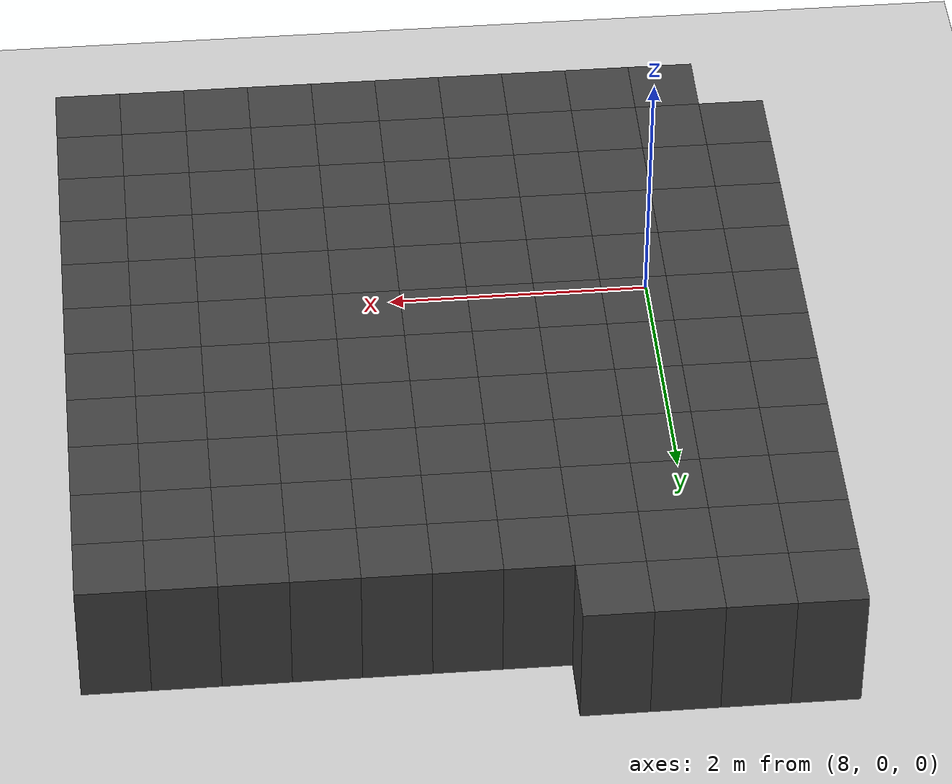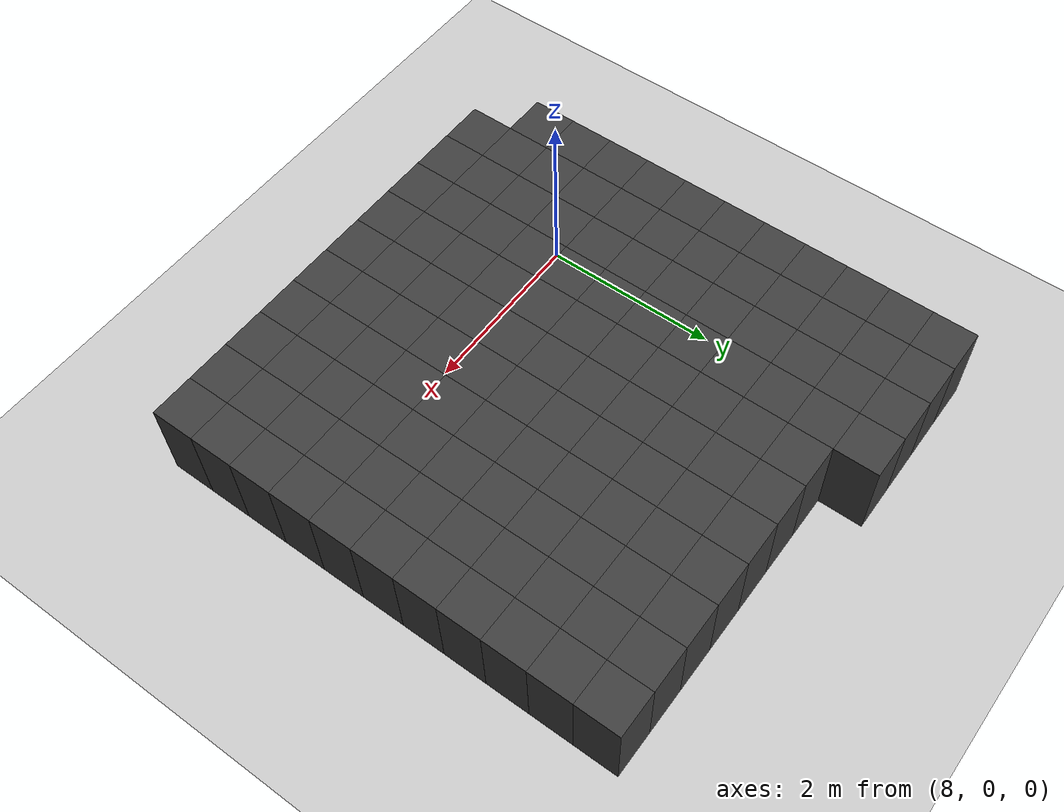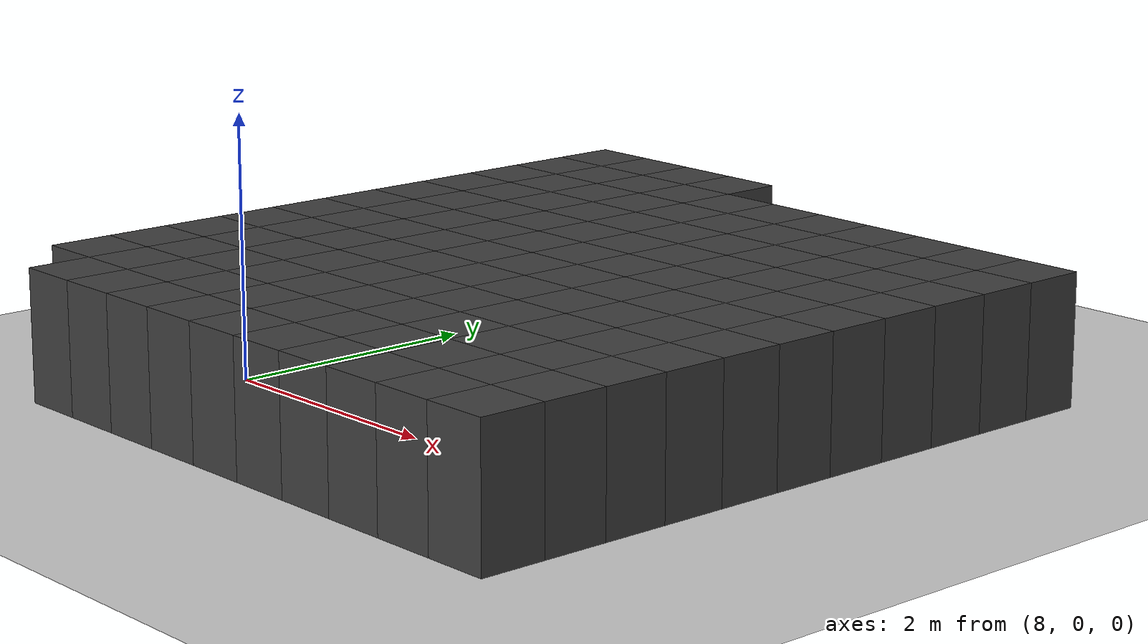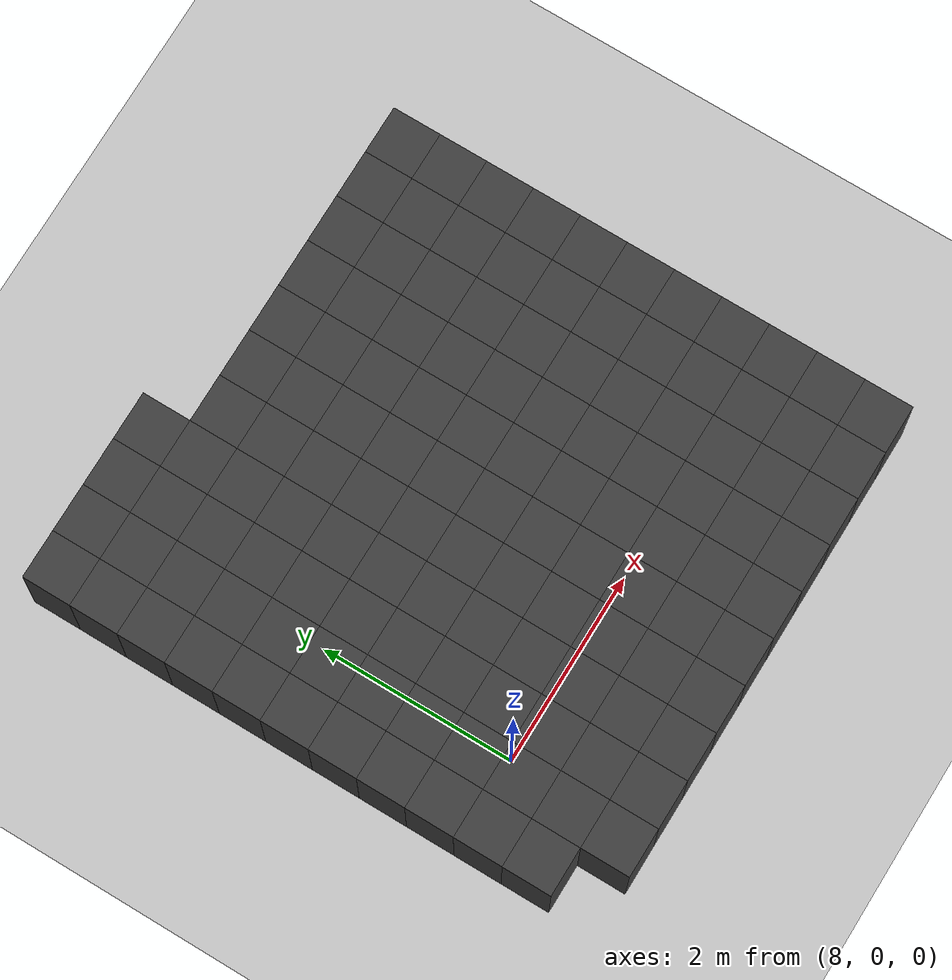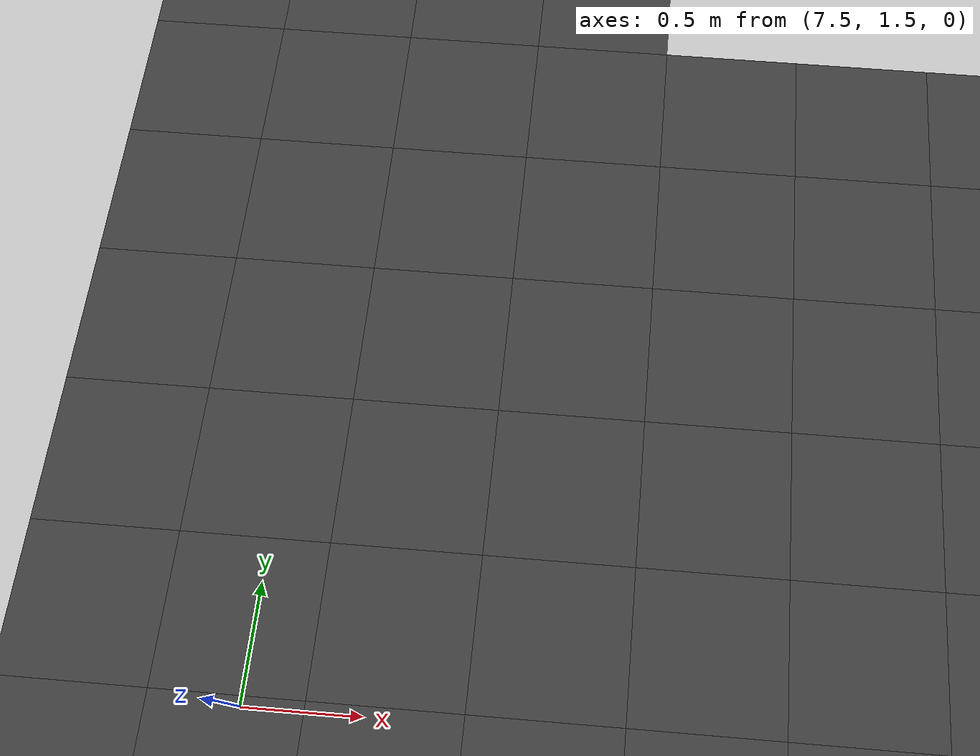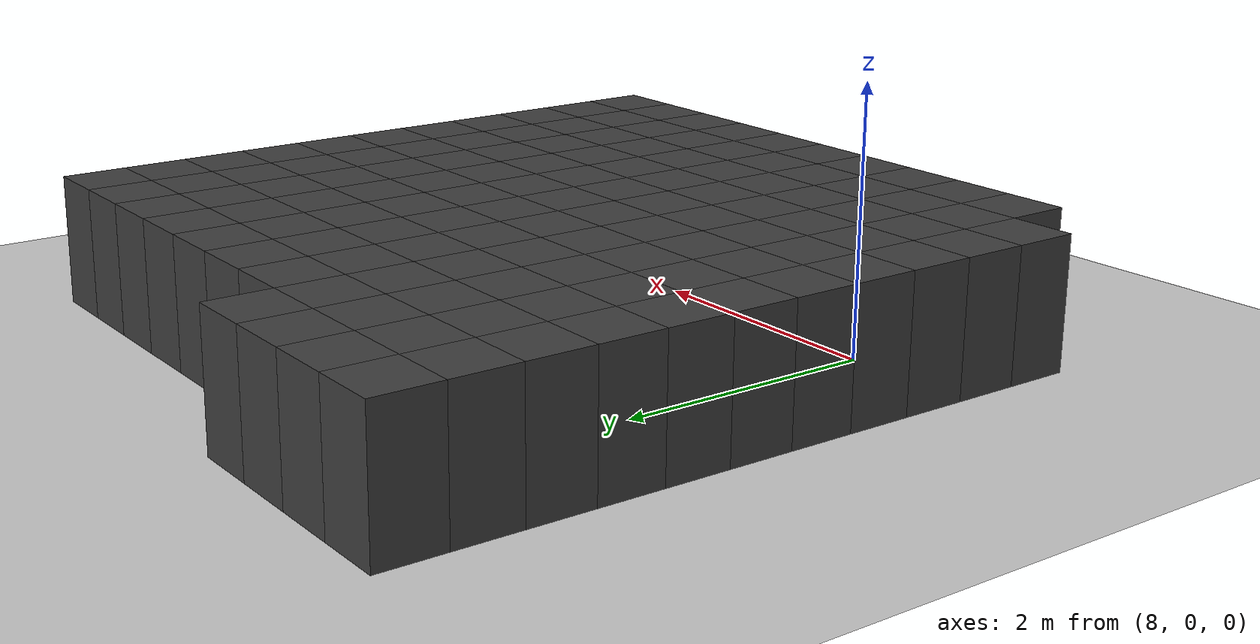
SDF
<sdf version="1.7">
 <world name="map_10726">
  <model name="ground_plane">
   <static>true</static>
   <link name="link">
    <collision name="collision">
     <geometry><plane><normal>0 0 1</normal><size>200 200</size></plane></geometry>
    </collision>
    <visual name="visual">
     <geometry><plane><normal>0 0 1</normal><size>200 200</size></plane></geometry>
     <material><ambient>0.8 0.8 0.8 1</ambient><diffuse>0.8 0.8 0.8 1</diffuse></material>
    </visual>
   </link>
  </model>
  <model name="maze_environment">
   <static>true</static>
   <link name="wall_765">
    <pose>7.250 4.250 0.500 0 0 0</pose>
    <collision name="col"><geometry><box><size>0.5 0.5 1.0</size></box></geometry></collision>
    <visual name="vis">
     <geometry><box><size>0.5 0.5 1.0</size></box></geometry>
     <material><ambient>0.15 0.15 0.15 1</ambient><diffuse>0.25 0.25 0.25 1</diffuse></material>
    </visual>
   </link>
   <link name="wall_766">
    <pose>7.750 4.250 0.500 0 0 0</pose>
    <collision name="col"><geometry><box><size>0.5 0.5 1.0</size></box></geometry></collision>
    <visual name="vis">
     <geometry><box><size>0.5 0.5 1.0</size></box></geometry>
     <material><ambient>0.15 0.15 0.15 1</ambient><diffuse>0.25 0.25 0.25 1</diffuse></material>
    </visual>
   </link>
   <link name="wall_767">
    <pose>8.250 4.250 0.500 0 0 0</pose>
    <collision name="col"><geometry><box><size>0.5 0.5 1.0</size></box></geometry></collision>
    <visual name="vis">
     <geometry><box><size>0.5 0.5 1.0</size></box></geometry>
     <material><ambient>0.15 0.15 0.15 1</ambient><diffuse>0.25 0.25 0.25 1</diffuse></material>
    </visual>
   </link>
   <link name="wall_768">
    <pose>8.750 4.250 0.500 0 0 0</pose>
    <collision name="col"><geometry><box><size>0.5 0.5 1.0</size></box></geometry></collision>
    <visual name="vis">
     <geometry><box><size>0.5 0.5 1.0</size></box></geometry>
     <material><ambient>0.15 0.15 0.15 1</ambient><diffuse>0.25 0.25 0.25 1</diffuse></material>
    </visual>
   </link>
   <link name="wall_813">
    <pose>7.250 3.750 0.500 0 0 0</pose>
    <collision name="col"><geometry><box><size>0.5 0.5 1.0</size></box></geometry></collision>
    <visual name="vis">
     <geometry><box><size>0.5 0.5 1.0</size></box></geometry>
     <material><ambient>0.15 0.15 0.15 1</ambient><diffuse>0.25 0.25 0.25 1</diffuse></material>
    </visual>
   </link>
   <link name="wall_814">
    <pose>7.750 3.750 0.500 0 0 0</pose>
    <collision name="col"><geometry><box><size>0.5 0.5 1.0</size></box></geometry></collision>
    <visual name="vis">
     <geometry><box><size>0.5 0.5 1.0</size></box></geometry>
     <material><ambient>0.15 0.15 0.15 1</ambient><diffuse>0.25 0.25 0.25 1</diffuse></material>
    </visual>
   </link>
   <link name="wall_815">
    <pose>8.250 3.750 0.500 0 0 0</pose>
    <collision name="col"><geometry><box><size>0.5 0.5 1.0</size></box></geometry></collision>
    <visual name="vis">
     <geometry><box><size>0.5 0.5 1.0</size></box></geometry>
     <material><ambient>0.15 0.15 0.15 1</ambient><diffuse>0.25 0.25 0.25 1</diffuse></material>
    </visual>
   </link>
   <link name="wall_816">
    <pose>8.750 3.750 0.500 0 0 0</pose>
    <collision name="col"><geometry><box><size>0.5 0.5 1.0</size></box></geometry></collision>
    <visual name="vis">
     <geometry><box><size>0.5 0.5 1.0</size></box></geometry>
     <material><ambient>0.15 0.15 0.15 1</ambient><diffuse>0.25 0.25 0.25 1</diffuse></material>
    </visual>
   </link>
   <link name="wall_817">
    <pose>9.250 3.750 0.500 0 0 0</pose>
    <collision name="col"><geometry><box><size>0.5 0.5 1.0</size></box></geometry></collision>
    <visual name="vis">
     <geometry><box><size>0.5 0.5 1.0</size></box></geometry>
     <material><ambient>0.15 0.15 0.15 1</ambient><diffuse>0.25 0.25 0.25 1</diffuse></material>
    </visual>
   </link>
   <link name="wall_818">
    <pose>9.750 3.750 0.500 0 0 0</pose>
    <collision name="col"><geometry><box><size>0.5 0.5 1.0</size></box></geometry></collision>
    <visual name="vis">
     <geometry><box><size>0.5 0.5 1.0</size></box></geometry>
     <material><ambient>0.15 0.15 0.15 1</ambient><diffuse>0.25 0.25 0.25 1</diffuse></material>
    </visual>
   </link>
   <link name="wall_819">
    <pose>10.250 3.750 0.500 0 0 0</pose>
    <collision name="col"><geometry><box><size>0.5 0.5 1.0</size></box></geometry></collision>
    <visual name="vis">
     <geometry><box><size>0.5 0.5 1.0</size></box></geometry>
     <material><ambient>0.15 0.15 0.15 1</ambient><diffuse>0.25 0.25 0.25 1</diffuse></material>
    </visual>
   </link>
   <link name="wall_820">
    <pose>10.750 3.750 0.500 0 0 0</pose>
    <collision name="col"><geometry><box><size>0.5 0.5 1.0</size></box></geometry></collision>
    <visual name="vis">
     <geometry><box><size>0.5 0.5 1.0</size></box></geometry>
     <material><ambient>0.15 0.15 0.15 1</ambient><diffuse>0.25 0.25 0.25 1</diffuse></material>
    </visual>
   </link>
   <link name="wall_821">
    <pose>11.250 3.750 0.500 0 0 0</pose>
    <collision name="col"><geometry><box><size>0.5 0.5 1.0</size></box></geometry></collision>
    <visual name="vis">
     <geometry><box><size>0.5 0.5 1.0</size></box></geometry>
     <material><ambient>0.15 0.15 0.15 1</ambient><diffuse>0.25 0.25 0.25 1</diffuse></material>
    </visual>
   </link>
   <link name="wall_822">
    <pose>11.750 3.750 0.500 0 0 0</pose>
    <collision name="col"><geometry><box><size>0.5 0.5 1.0</size></box></geometry></collision>
    <visual name="vis">
     <geometry><box><size>0.5 0.5 1.0</size></box></geometry>
     <material><ambient>0.15 0.15 0.15 1</ambient><diffuse>0.25 0.25 0.25 1</diffuse></material>
    </visual>
   </link>
   <link name="wall_823">
    <pose>12.250 3.750 0.500 0 0 0</pose>
    <collision name="col"><geometry><box><size>0.5 0.5 1.0</size></box></geometry></collision>
    <visual name="vis">
     <geometry><box><size>0.5 0.5 1.0</size></box></geometry>
     <material><ambient>0.15 0.15 0.15 1</ambient><diffuse>0.25 0.25 0.25 1</diffuse></material>
    </visual>
   </link>
   <link name="wall_861">
    <pose>7.250 3.250 0.500 0 0 0</pose>
    <collision name="col"><geometry><box><size>0.5 0.5 1.0</size></box></geometry></collision>
    <visual name="vis">
     <geometry><box><size>0.5 0.5 1.0</size></box></geometry>
     <material><ambient>0.15 0.15 0.15 1</ambient><diffuse>0.25 0.25 0.25 1</diffuse></material>
    </visual>
   </link>
   <link name="wall_862">
    <pose>7.750 3.250 0.500 0 0 0</pose>
    <collision name="col"><geometry><box><size>0.5 0.5 1.0</size></box></geometry></collision>
    <visual name="vis">
     <geometry><box><size>0.5 0.5 1.0</size></box></geometry>
     <material><ambient>0.15 0.15 0.15 1</ambient><diffuse>0.25 0.25 0.25 1</diffuse></material>
    </visual>
   </link>
   <link name="wall_863">
    <pose>8.250 3.250 0.500 0 0 0</pose>
    <collision name="col"><geometry><box><size>0.5 0.5 1.0</size></box></geometry></collision>
    <visual name="vis">
     <geometry><box><size>0.5 0.5 1.0</size></box></geometry>
     <material><ambient>0.15 0.15 0.15 1</ambient><diffuse>0.25 0.25 0.25 1</diffuse></material>
    </visual>
   </link>
   <link name="wall_864">
    <pose>8.750 3.250 0.500 0 0 0</pose>
    <collision name="col"><geometry><box><size>0.5 0.5 1.0</size></box></geometry></collision>
    <visual name="vis">
     <geometry><box><size>0.5 0.5 1.0</size></box></geometry>
     <material><ambient>0.15 0.15 0.15 1</ambient><diffuse>0.25 0.25 0.25 1</diffuse></material>
    </visual>
   </link>
   <link name="wall_865">
    <pose>9.250 3.250 0.500 0 0 0</pose>
    <collision name="col"><geometry><box><size>0.5 0.5 1.0</size></box></geometry></collision>
    <visual name="vis">
     <geometry><box><size>0.5 0.5 1.0</size></box></geometry>
     <material><ambient>0.15 0.15 0.15 1</ambient><diffuse>0.25 0.25 0.25 1</diffuse></material>
    </visual>
   </link>
   <link name="wall_866">
    <pose>9.750 3.250 0.500 0 0 0</pose>
    <collision name="col"><geometry><box><size>0.5 0.5 1.0</size></box></geometry></collision>
    <visual name="vis">
     <geometry><box><size>0.5 0.5 1.0</size></box></geometry>
     <material><ambient>0.15 0.15 0.15 1</ambient><diffuse>0.25 0.25 0.25 1</diffuse></material>
    </visual>
   </link>
   <link name="wall_867">
    <pose>10.250 3.250 0.500 0 0 0</pose>
    <collision name="col"><geometry><box><size>0.5 0.5 1.0</size></box></geometry></collision>
    <visual name="vis">
     <geometry><box><size>0.5 0.5 1.0</size></box></geometry>
     <material><ambient>0.15 0.15 0.15 1</ambient><diffuse>0.25 0.25 0.25 1</diffuse></material>
    </visual>
   </link>
   <link name="wall_868">
    <pose>10.750 3.250 0.500 0 0 0</pose>
    <collision name="col"><geometry><box><size>0.5 0.5 1.0</size></box></geometry></collision>
    <visual name="vis">
     <geometry><box><size>0.5 0.5 1.0</size></box></geometry>
     <material><ambient>0.15 0.15 0.15 1</ambient><diffuse>0.25 0.25 0.25 1</diffuse></material>
    </visual>
   </link>
   <link name="wall_869">
    <pose>11.250 3.250 0.500 0 0 0</pose>
    <collision name="col"><geometry><box><size>0.5 0.5 1.0</size></box></geometry></collision>
    <visual name="vis">
     <geometry><box><size>0.5 0.5 1.0</size></box></geometry>
     <material><ambient>0.15 0.15 0.15 1</ambient><diffuse>0.25 0.25 0.25 1</diffuse></material>
    </visual>
   </link>
   <link name="wall_870">
    <pose>11.750 3.250 0.500 0 0 0</pose>
    <collision name="col"><geometry><box><size>0.5 0.5 1.0</size></box></geometry></collision>
    <visual name="vis">
     <geometry><box><size>0.5 0.5 1.0</size></box></geometry>
     <material><ambient>0.15 0.15 0.15 1</ambient><diffuse>0.25 0.25 0.25 1</diffuse></material>
    </visual>
   </link>
   <link name="wall_871">
    <pose>12.250 3.250 0.500 0 0 0</pose>
    <collision name="col"><geometry><box><size>0.5 0.5 1.0</size></box></geometry></collision>
    <visual name="vis">
     <geometry><box><size>0.5 0.5 1.0</size></box></geometry>
     <material><ambient>0.15 0.15 0.15 1</ambient><diffuse>0.25 0.25 0.25 1</diffuse></material>
    </visual>
   </link>
   <link name="wall_909">
    <pose>7.250 2.750 0.500 0 0 0</pose>
    <collision name="col"><geometry><box><size>0.5 0.5 1.0</size></box></geometry></collision>
    <visual name="vis">
     <geometry><box><size>0.5 0.5 1.0</size></box></geometry>
     <material><ambient>0.15 0.15 0.15 1</ambient><diffuse>0.25 0.25 0.25 1</diffuse></material>
    </visual>
   </link>
   <link name="wall_910">
    <pose>7.750 2.750 0.500 0 0 0</pose>
    <collision name="col"><geometry><box><size>0.5 0.5 1.0</size></box></geometry></collision>
    <visual name="vis">
     <geometry><box><size>0.5 0.5 1.0</size></box></geometry>
     <material><ambient>0.15 0.15 0.15 1</ambient><diffuse>0.25 0.25 0.25 1</diffuse></material>
    </visual>
   </link>
   <link name="wall_911">
    <pose>8.250 2.750 0.500 0 0 0</pose>
    <collision name="col"><geometry><box><size>0.5 0.5 1.0</size></box></geometry></collision>
    <visual name="vis">
     <geometry><box><size>0.5 0.5 1.0</size></box></geometry>
     <material><ambient>0.15 0.15 0.15 1</ambient><diffuse>0.25 0.25 0.25 1</diffuse></material>
    </visual>
   </link>
   <link name="wall_912">
    <pose>8.750 2.750 0.500 0 0 0</pose>
    <collision name="col"><geometry><box><size>0.5 0.5 1.0</size></box></geometry></collision>
    <visual name="vis">
     <geometry><box><size>0.5 0.5 1.0</size></box></geometry>
     <material><ambient>0.15 0.15 0.15 1</ambient><diffuse>0.25 0.25 0.25 1</diffuse></material>
    </visual>
   </link>
   <link name="wall_913">
    <pose>9.250 2.750 0.500 0 0 0</pose>
    <collision name="col"><geometry><box><size>0.5 0.5 1.0</size></box></geometry></collision>
    <visual name="vis">
     <geometry><box><size>0.5 0.5 1.0</size></box></geometry>
     <material><ambient>0.15 0.15 0.15 1</ambient><diffuse>0.25 0.25 0.25 1</diffuse></material>
    </visual>
   </link>
   <link name="wall_914">
    <pose>9.750 2.750 0.500 0 0 0</pose>
    <collision name="col"><geometry><box><size>0.5 0.5 1.0</size></box></geometry></collision>
    <visual name="vis">
     <geometry><box><size>0.5 0.5 1.0</size></box></geometry>
     <material><ambient>0.15 0.15 0.15 1</ambient><diffuse>0.25 0.25 0.25 1</diffuse></material>
    </visual>
   </link>
   <link name="wall_915">
    <pose>10.250 2.750 0.500 0 0 0</pose>
    <collision name="col"><geometry><box><size>0.5 0.5 1.0</size></box></geometry></collision>
    <visual name="vis">
     <geometry><box><size>0.5 0.5 1.0</size></box></geometry>
     <material><ambient>0.15 0.15 0.15 1</ambient><diffuse>0.25 0.25 0.25 1</diffuse></material>
    </visual>
   </link>
   <link name="wall_916">
    <pose>10.750 2.750 0.500 0 0 0</pose>
    <collision name="col"><geometry><box><size>0.5 0.5 1.0</size></box></geometry></collision>
    <visual name="vis">
     <geometry><box><size>0.5 0.5 1.0</size></box></geometry>
     <material><ambient>0.15 0.15 0.15 1</ambient><diffuse>0.25 0.25 0.25 1</diffuse></material>
    </visual>
   </link>
   <link name="wall_917">
    <pose>11.250 2.750 0.500 0 0 0</pose>
    <collision name="col"><geometry><box><size>0.5 0.5 1.0</size></box></geometry></collision>
    <visual name="vis">
     <geometry><box><size>0.5 0.5 1.0</size></box></geometry>
     <material><ambient>0.15 0.15 0.15 1</ambient><diffuse>0.25 0.25 0.25 1</diffuse></material>
    </visual>
   </link>
   <link name="wall_918">
    <pose>11.750 2.750 0.500 0 0 0</pose>
    <collision name="col"><geometry><box><size>0.5 0.5 1.0</size></box></geometry></collision>
    <visual name="vis">
     <geometry><box><size>0.5 0.5 1.0</size></box></geometry>
     <material><ambient>0.15 0.15 0.15 1</ambient><diffuse>0.25 0.25 0.25 1</diffuse></material>
    </visual>
   </link>
   <link name="wall_919">
    <pose>12.250 2.750 0.500 0 0 0</pose>
    <collision name="col"><geometry><box><size>0.5 0.5 1.0</size></box></geometry></collision>
    <visual name="vis">
     <geometry><box><size>0.5 0.5 1.0</size></box></geometry>
     <material><ambient>0.15 0.15 0.15 1</ambient><diffuse>0.25 0.25 0.25 1</diffuse></material>
    </visual>
   </link>
   <link name="wall_951">
    <pose>7.250 2.250 0.500 0 0 0</pose>
    <collision name="col"><geometry><box><size>0.5 0.5 1.0</size></box></geometry></collision>
    <visual name="vis">
     <geometry><box><size>0.5 0.5 1.0</size></box></geometry>
     <material><ambient>0.15 0.15 0.15 1</ambient><diffuse>0.25 0.25 0.25 1</diffuse></material>
    </visual>
   </link>
   <link name="wall_952">
    <pose>7.750 2.250 0.500 0 0 0</pose>
    <collision name="col"><geometry><box><size>0.5 0.5 1.0</size></box></geometry></collision>
    <visual name="vis">
     <geometry><box><size>0.5 0.5 1.0</size></box></geometry>
     <material><ambient>0.15 0.15 0.15 1</ambient><diffuse>0.25 0.25 0.25 1</diffuse></material>
    </visual>
   </link>
   <link name="wall_953">
    <pose>8.250 2.250 0.500 0 0 0</pose>
    <collision name="col"><geometry><box><size>0.5 0.5 1.0</size></box></geometry></collision>
    <visual name="vis">
     <geometry><box><size>0.5 0.5 1.0</size></box></geometry>
     <material><ambient>0.15 0.15 0.15 1</ambient><diffuse>0.25 0.25 0.25 1</diffuse></material>
    </visual>
   </link>
   <link name="wall_954">
    <pose>8.750 2.250 0.500 0 0 0</pose>
    <collision name="col"><geometry><box><size>0.5 0.5 1.0</size></box></geometry></collision>
    <visual name="vis">
     <geometry><box><size>0.5 0.5 1.0</size></box></geometry>
     <material><ambient>0.15 0.15 0.15 1</ambient><diffuse>0.25 0.25 0.25 1</diffuse></material>
    </visual>
   </link>
   <link name="wall_955">
    <pose>9.250 2.250 0.500 0 0 0</pose>
    <collision name="col"><geometry><box><size>0.5 0.5 1.0</size></box></geometry></collision>
    <visual name="vis">
     <geometry><box><size>0.5 0.5 1.0</size></box></geometry>
     <material><ambient>0.15 0.15 0.15 1</ambient><diffuse>0.25 0.25 0.25 1</diffuse></material>
    </visual>
   </link>
   <link name="wall_956">
    <pose>9.750 2.250 0.500 0 0 0</pose>
    <collision name="col"><geometry><box><size>0.5 0.5 1.0</size></box></geometry></collision>
    <visual name="vis">
     <geometry><box><size>0.5 0.5 1.0</size></box></geometry>
     <material><ambient>0.15 0.15 0.15 1</ambient><diffuse>0.25 0.25 0.25 1</diffuse></material>
    </visual>
   </link>
   <link name="wall_957">
    <pose>10.250 2.250 0.500 0 0 0</pose>
    <collision name="col"><geometry><box><size>0.5 0.5 1.0</size></box></geometry></collision>
    <visual name="vis">
     <geometry><box><size>0.5 0.5 1.0</size></box></geometry>
     <material><ambient>0.15 0.15 0.15 1</ambient><diffuse>0.25 0.25 0.25 1</diffuse></material>
    </visual>
   </link>
   <link name="wall_958">
    <pose>10.750 2.250 0.500 0 0 0</pose>
    <collision name="col"><geometry><box><size>0.5 0.5 1.0</size></box></geometry></collision>
    <visual name="vis">
     <geometry><box><size>0.5 0.5 1.0</size></box></geometry>
     <material><ambient>0.15 0.15 0.15 1</ambient><diffuse>0.25 0.25 0.25 1</diffuse></material>
    </visual>
   </link>
   <link name="wall_959">
    <pose>11.250 2.250 0.500 0 0 0</pose>
    <collision name="col"><geometry><box><size>0.5 0.5 1.0</size></box></geometry></collision>
    <visual name="vis">
     <geometry><box><size>0.5 0.5 1.0</size></box></geometry>
     <material><ambient>0.15 0.15 0.15 1</ambient><diffuse>0.25 0.25 0.25 1</diffuse></material>
    </visual>
   </link>
   <link name="wall_960">
    <pose>11.750 2.250 0.500 0 0 0</pose>
    <collision name="col"><geometry><box><size>0.5 0.5 1.0</size></box></geometry></collision>
    <visual name="vis">
     <geometry><box><size>0.5 0.5 1.0</size></box></geometry>
     <material><ambient>0.15 0.15 0.15 1</ambient><diffuse>0.25 0.25 0.25 1</diffuse></material>
    </visual>
   </link>
   <link name="wall_961">
    <pose>12.250 2.250 0.500 0 0 0</pose>
    <collision name="col"><geometry><box><size>0.5 0.5 1.0</size></box></geometry></collision>
    <visual name="vis">
     <geometry><box><size>0.5 0.5 1.0</size></box></geometry>
     <material><ambient>0.15 0.15 0.15 1</ambient><diffuse>0.25 0.25 0.25 1</diffuse></material>
    </visual>
   </link>
   <link name="wall_993">
    <pose>7.250 1.750 0.500 0 0 0</pose>
    <collision name="col"><geometry><box><size>0.5 0.5 1.0</size></box></geometry></collision>
    <visual name="vis">
     <geometry><box><size>0.5 0.5 1.0</size></box></geometry>
     <material><ambient>0.15 0.15 0.15 1</ambient><diffuse>0.25 0.25 0.25 1</diffuse></material>
    </visual>
   </link>
   <link name="wall_994">
    <pose>7.750 1.750 0.500 0 0 0</pose>
    <collision name="col"><geometry><box><size>0.5 0.5 1.0</size></box></geometry></collision>
    <visual name="vis">
     <geometry><box><size>0.5 0.5 1.0</size></box></geometry>
     <material><ambient>0.15 0.15 0.15 1</ambient><diffuse>0.25 0.25 0.25 1</diffuse></material>
    </visual>
   </link>
   <link name="wall_995">
    <pose>8.250 1.750 0.500 0 0 0</pose>
    <collision name="col"><geometry><box><size>0.5 0.5 1.0</size></box></geometry></collision>
    <visual name="vis">
     <geometry><box><size>0.5 0.5 1.0</size></box></geometry>
     <material><ambient>0.15 0.15 0.15 1</ambient><diffuse>0.25 0.25 0.25 1</diffuse></material>
    </visual>
   </link>
   <link name="wall_996">
    <pose>8.750 1.750 0.500 0 0 0</pose>
    <collision name="col"><geometry><box><size>0.5 0.5 1.0</size></box></geometry></collision>
    <visual name="vis">
     <geometry><box><size>0.5 0.5 1.0</size></box></geometry>
     <material><ambient>0.15 0.15 0.15 1</ambient><diffuse>0.25 0.25 0.25 1</diffuse></material>
    </visual>
   </link>
   <link name="wall_997">
    <pose>9.250 1.750 0.500 0 0 0</pose>
    <collision name="col"><geometry><box><size>0.5 0.5 1.0</size></box></geometry></collision>
    <visual name="vis">
     <geometry><box><size>0.5 0.5 1.0</size></box></geometry>
     <material><ambient>0.15 0.15 0.15 1</ambient><diffuse>0.25 0.25 0.25 1</diffuse></material>
    </visual>
   </link>
   <link name="wall_998">
    <pose>9.750 1.750 0.500 0 0 0</pose>
    <collision name="col"><geometry><box><size>0.5 0.5 1.0</size></box></geometry></collision>
    <visual name="vis">
     <geometry><box><size>0.5 0.5 1.0</size></box></geometry>
     <material><ambient>0.15 0.15 0.15 1</ambient><diffuse>0.25 0.25 0.25 1</diffuse></material>
    </visual>
   </link>
   <link name="wall_999">
    <pose>10.250 1.750 0.500 0 0 0</pose>
    <collision name="col"><geometry><box><size>0.5 0.5 1.0</size></box></geometry></collision>
    <visual name="vis">
     <geometry><box><size>0.5 0.5 1.0</size></box></geometry>
     <material><ambient>0.15 0.15 0.15 1</ambient><diffuse>0.25 0.25 0.25 1</diffuse></material>
    </visual>
   </link>
   <link name="wall_1000">
    <pose>10.750 1.750 0.500 0 0 0</pose>
    <collision name="col"><geometry><box><size>0.5 0.5 1.0</size></box></geometry></collision>
    <visual name="vis">
     <geometry><box><size>0.5 0.5 1.0</size></box></geometry>
     <material><ambient>0.15 0.15 0.15 1</ambient><diffuse>0.25 0.25 0.25 1</diffuse></material>
    </visual>
   </link>
   <link name="wall_1001">
    <pose>11.250 1.750 0.500 0 0 0</pose>
    <collision name="col"><geometry><box><size>0.5 0.5 1.0</size></box></geometry></collision>
    <visual name="vis">
     <geometry><box><size>0.5 0.5 1.0</size></box></geometry>
     <material><ambient>0.15 0.15 0.15 1</ambient><diffuse>0.25 0.25 0.25 1</diffuse></material>
    </visual>
   </link>
   <link name="wall_1002">
    <pose>11.750 1.750 0.500 0 0 0</pose>
    <collision name="col"><geometry><box><size>0.5 0.5 1.0</size></box></geometry></collision>
    <visual name="vis">
     <geometry><box><size>0.5 0.5 1.0</size></box></geometry>
     <material><ambient>0.15 0.15 0.15 1</ambient><diffuse>0.25 0.25 0.25 1</diffuse></material>
    </visual>
   </link>
   <link name="wall_1003">
    <pose>12.250 1.750 0.500 0 0 0</pose>
    <collision name="col"><geometry><box><size>0.5 0.5 1.0</size></box></geometry></collision>
    <visual name="vis">
     <geometry><box><size>0.5 0.5 1.0</size></box></geometry>
     <material><ambient>0.15 0.15 0.15 1</ambient><diffuse>0.25 0.25 0.25 1</diffuse></material>
    </visual>
   </link>
   <link name="wall_1035">
    <pose>7.250 1.250 0.500 0 0 0</pose>
    <collision name="col"><geometry><box><size>0.5 0.5 1.0</size></box></geometry></collision>
    <visual name="vis">
     <geometry><box><size>0.5 0.5 1.0</size></box></geometry>
     <material><ambient>0.15 0.15 0.15 1</ambient><diffuse>0.25 0.25 0.25 1</diffuse></material>
    </visual>
   </link>
   <link name="wall_1036">
    <pose>7.750 1.250 0.500 0 0 0</pose>
    <collision name="col"><geometry><box><size>0.5 0.5 1.0</size></box></geometry></collision>
    <visual name="vis">
     <geometry><box><size>0.5 0.5 1.0</size></box></geometry>
     <material><ambient>0.15 0.15 0.15 1</ambient><diffuse>0.25 0.25 0.25 1</diffuse></material>
    </visual>
   </link>
   <link name="wall_1037">
    <pose>8.250 1.250 0.500 0 0 0</pose>
    <collision name="col"><geometry><box><size>0.5 0.5 1.0</size></box></geometry></collision>
    <visual name="vis">
     <geometry><box><size>0.5 0.5 1.0</size></box></geometry>
     <material><ambient>0.15 0.15 0.15 1</ambient><diffuse>0.25 0.25 0.25 1</diffuse></material>
    </visual>
   </link>
   <link name="wall_1038">
    <pose>8.750 1.250 0.500 0 0 0</pose>
    <collision name="col"><geometry><box><size>0.5 0.5 1.0</size></box></geometry></collision>
    <visual name="vis">
     <geometry><box><size>0.5 0.5 1.0</size></box></geometry>
     <material><ambient>0.15 0.15 0.15 1</ambient><diffuse>0.25 0.25 0.25 1</diffuse></material>
    </visual>
   </link>
   <link name="wall_1039">
    <pose>9.250 1.250 0.500 0 0 0</pose>
    <collision name="col"><geometry><box><size>0.5 0.5 1.0</size></box></geometry></collision>
    <visual name="vis">
     <geometry><box><size>0.5 0.5 1.0</size></box></geometry>
     <material><ambient>0.15 0.15 0.15 1</ambient><diffuse>0.25 0.25 0.25 1</diffuse></material>
    </visual>
   </link>
   <link name="wall_1040">
    <pose>9.750 1.250 0.500 0 0 0</pose>
    <collision name="col"><geometry><box><size>0.5 0.5 1.0</size></box></geometry></collision>
    <visual name="vis">
     <geometry><box><size>0.5 0.5 1.0</size></box></geometry>
     <material><ambient>0.15 0.15 0.15 1</ambient><diffuse>0.25 0.25 0.25 1</diffuse></material>
    </visual>
   </link>
   <link name="wall_1041">
    <pose>10.250 1.250 0.500 0 0 0</pose>
    <collision name="col"><geometry><box><size>0.5 0.5 1.0</size></box></geometry></collision>
    <visual name="vis">
     <geometry><box><size>0.5 0.5 1.0</size></box></geometry>
     <material><ambient>0.15 0.15 0.15 1</ambient><diffuse>0.25 0.25 0.25 1</diffuse></material>
    </visual>
   </link>
   <link name="wall_1042">
    <pose>10.750 1.250 0.500 0 0 0</pose>
    <collision name="col"><geometry><box><size>0.5 0.5 1.0</size></box></geometry></collision>
    <visual name="vis">
     <geometry><box><size>0.5 0.5 1.0</size></box></geometry>
     <material><ambient>0.15 0.15 0.15 1</ambient><diffuse>0.25 0.25 0.25 1</diffuse></material>
    </visual>
   </link>
   <link name="wall_1043">
    <pose>11.250 1.250 0.500 0 0 0</pose>
    <collision name="col"><geometry><box><size>0.5 0.5 1.0</size></box></geometry></collision>
    <visual name="vis">
     <geometry><box><size>0.5 0.5 1.0</size></box></geometry>
     <material><ambient>0.15 0.15 0.15 1</ambient><diffuse>0.25 0.25 0.25 1</diffuse></material>
    </visual>
   </link>
   <link name="wall_1044">
    <pose>11.750 1.250 0.500 0 0 0</pose>
    <collision name="col"><geometry><box><size>0.5 0.5 1.0</size></box></geometry></collision>
    <visual name="vis">
     <geometry><box><size>0.5 0.5 1.0</size></box></geometry>
     <material><ambient>0.15 0.15 0.15 1</ambient><diffuse>0.25 0.25 0.25 1</diffuse></material>
    </visual>
   </link>
   <link name="wall_1045">
    <pose>12.250 1.250 0.500 0 0 0</pose>
    <collision name="col"><geometry><box><size>0.5 0.5 1.0</size></box></geometry></collision>
    <visual name="vis">
     <geometry><box><size>0.5 0.5 1.0</size></box></geometry>
     <material><ambient>0.15 0.15 0.15 1</ambient><diffuse>0.25 0.25 0.25 1</diffuse></material>
    </visual>
   </link>
   <link name="wall_1067">
    <pose>7.250 0.750 0.500 0 0 0</pose>
    <collision name="col"><geometry><box><size>0.5 0.5 1.0</size></box></geometry></collision>
    <visual name="vis">
     <geometry><box><size>0.5 0.5 1.0</size></box></geometry>
     <material><ambient>0.15 0.15 0.15 1</ambient><diffuse>0.25 0.25 0.25 1</diffuse></material>
    </visual>
   </link>
   <link name="wall_1068">
    <pose>7.750 0.750 0.500 0 0 0</pose>
    <collision name="col"><geometry><box><size>0.5 0.5 1.0</size></box></geometry></collision>
    <visual name="vis">
     <geometry><box><size>0.5 0.5 1.0</size></box></geometry>
     <material><ambient>0.15 0.15 0.15 1</ambient><diffuse>0.25 0.25 0.25 1</diffuse></material>
    </visual>
   </link>
   <link name="wall_1069">
    <pose>8.250 0.750 0.500 0 0 0</pose>
    <collision name="col"><geometry><box><size>0.5 0.5 1.0</size></box></geometry></collision>
    <visual name="vis">
     <geometry><box><size>0.5 0.5 1.0</size></box></geometry>
     <material><ambient>0.15 0.15 0.15 1</ambient><diffuse>0.25 0.25 0.25 1</diffuse></material>
    </visual>
   </link>
   <link name="wall_1070">
    <pose>8.750 0.750 0.500 0 0 0</pose>
    <collision name="col"><geometry><box><size>0.5 0.5 1.0</size></box></geometry></collision>
    <visual name="vis">
     <geometry><box><size>0.5 0.5 1.0</size></box></geometry>
     <material><ambient>0.15 0.15 0.15 1</ambient><diffuse>0.25 0.25 0.25 1</diffuse></material>
    </visual>
   </link>
   <link name="wall_1071">
    <pose>9.250 0.750 0.500 0 0 0</pose>
    <collision name="col"><geometry><box><size>0.5 0.5 1.0</size></box></geometry></collision>
    <visual name="vis">
     <geometry><box><size>0.5 0.5 1.0</size></box></geometry>
     <material><ambient>0.15 0.15 0.15 1</ambient><diffuse>0.25 0.25 0.25 1</diffuse></material>
    </visual>
   </link>
   <link name="wall_1072">
    <pose>9.750 0.750 0.500 0 0 0</pose>
    <collision name="col"><geometry><box><size>0.5 0.5 1.0</size></box></geometry></collision>
    <visual name="vis">
     <geometry><box><size>0.5 0.5 1.0</size></box></geometry>
     <material><ambient>0.15 0.15 0.15 1</ambient><diffuse>0.25 0.25 0.25 1</diffuse></material>
    </visual>
   </link>
   <link name="wall_1073">
    <pose>10.250 0.750 0.500 0 0 0</pose>
    <collision name="col"><geometry><box><size>0.5 0.5 1.0</size></box></geometry></collision>
    <visual name="vis">
     <geometry><box><size>0.5 0.5 1.0</size></box></geometry>
     <material><ambient>0.15 0.15 0.15 1</ambient><diffuse>0.25 0.25 0.25 1</diffuse></material>
    </visual>
   </link>
   <link name="wall_1074">
    <pose>10.750 0.750 0.500 0 0 0</pose>
    <collision name="col"><geometry><box><size>0.5 0.5 1.0</size></box></geometry></collision>
    <visual name="vis">
     <geometry><box><size>0.5 0.5 1.0</size></box></geometry>
     <material><ambient>0.15 0.15 0.15 1</ambient><diffuse>0.25 0.25 0.25 1</diffuse></material>
    </visual>
   </link>
   <link name="wall_1075">
    <pose>11.250 0.750 0.500 0 0 0</pose>
    <collision name="col"><geometry><box><size>0.5 0.5 1.0</size></box></geometry></collision>
    <visual name="vis">
     <geometry><box><size>0.5 0.5 1.0</size></box></geometry>
     <material><ambient>0.15 0.15 0.15 1</ambient><diffuse>0.25 0.25 0.25 1</diffuse></material>
    </visual>
   </link>
   <link name="wall_1076">
    <pose>11.750 0.750 0.500 0 0 0</pose>
    <collision name="col"><geometry><box><size>0.5 0.5 1.0</size></box></geometry></collision>
    <visual name="vis">
     <geometry><box><size>0.5 0.5 1.0</size></box></geometry>
     <material><ambient>0.15 0.15 0.15 1</ambient><diffuse>0.25 0.25 0.25 1</diffuse></material>
    </visual>
   </link>
   <link name="wall_1077">
    <pose>12.250 0.750 0.500 0 0 0</pose>
    <collision name="col"><geometry><box><size>0.5 0.5 1.0</size></box></geometry></collision>
    <visual name="vis">
     <geometry><box><size>0.5 0.5 1.0</size></box></geometry>
     <material><ambient>0.15 0.15 0.15 1</ambient><diffuse>0.25 0.25 0.25 1</diffuse></material>
    </visual>
   </link>
   <link name="wall_1108">
    <pose>7.250 0.250 0.500 0 0 0</pose>
    <collision name="col"><geometry><box><size>0.5 0.5 1.0</size></box></geometry></collision>
    <visual name="vis">
     <geometry><box><size>0.5 0.5 1.0</size></box></geometry>
     <material><ambient>0.15 0.15 0.15 1</ambient><diffuse>0.25 0.25 0.25 1</diffuse></material>
    </visual>
   </link>
   <link name="wall_1109">
    <pose>7.750 0.250 0.500 0 0 0</pose>
    <collision name="col"><geometry><box><size>0.5 0.5 1.0</size></box></geometry></collision>
    <visual name="vis">
     <geometry><box><size>0.5 0.5 1.0</size></box></geometry>
     <material><ambient>0.15 0.15 0.15 1</ambient><diffuse>0.25 0.25 0.25 1</diffuse></material>
    </visual>
   </link>
   <link name="wall_1110">
    <pose>8.250 0.250 0.500 0 0 0</pose>
    <collision name="col"><geometry><box><size>0.5 0.5 1.0</size></box></geometry></collision>
    <visual name="vis">
     <geometry><box><size>0.5 0.5 1.0</size></box></geometry>
     <material><ambient>0.15 0.15 0.15 1</ambient><diffuse>0.25 0.25 0.25 1</diffuse></material>
    </visual>
   </link>
   <link name="wall_1111">
    <pose>8.750 0.250 0.500 0 0 0</pose>
    <collision name="col"><geometry><box><size>0.5 0.5 1.0</size></box></geometry></collision>
    <visual name="vis">
     <geometry><box><size>0.5 0.5 1.0</size></box></geometry>
     <material><ambient>0.15 0.15 0.15 1</ambient><diffuse>0.25 0.25 0.25 1</diffuse></material>
    </visual>
   </link>
   <link name="wall_1112">
    <pose>9.250 0.250 0.500 0 0 0</pose>
    <collision name="col"><geometry><box><size>0.5 0.5 1.0</size></box></geometry></collision>
    <visual name="vis">
     <geometry><box><size>0.5 0.5 1.0</size></box></geometry>
     <material><ambient>0.15 0.15 0.15 1</ambient><diffuse>0.25 0.25 0.25 1</diffuse></material>
    </visual>
   </link>
   <link name="wall_1113">
    <pose>9.750 0.250 0.500 0 0 0</pose>
    <collision name="col"><geometry><box><size>0.5 0.5 1.0</size></box></geometry></collision>
    <visual name="vis">
     <geometry><box><size>0.5 0.5 1.0</size></box></geometry>
     <material><ambient>0.15 0.15 0.15 1</ambient><diffuse>0.25 0.25 0.25 1</diffuse></material>
    </visual>
   </link>
   <link name="wall_1114">
    <pose>10.250 0.250 0.500 0 0 0</pose>
    <collision name="col"><geometry><box><size>0.5 0.5 1.0</size></box></geometry></collision>
    <visual name="vis">
     <geometry><box><size>0.5 0.5 1.0</size></box></geometry>
     <material><ambient>0.15 0.15 0.15 1</ambient><diffuse>0.25 0.25 0.25 1</diffuse></material>
    </visual>
   </link>
   <link name="wall_1115">
    <pose>10.750 0.250 0.500 0 0 0</pose>
    <collision name="col"><geometry><box><size>0.5 0.5 1.0</size></box></geometry></collision>
    <visual name="vis">
     <geometry><box><size>0.5 0.5 1.0</size></box></geometry>
     <material><ambient>0.15 0.15 0.15 1</ambient><diffuse>0.25 0.25 0.25 1</diffuse></material>
    </visual>
   </link>
   <link name="wall_1116">
    <pose>11.250 0.250 0.500 0 0 0</pose>
    <collision name="col"><geometry><box><size>0.5 0.5 1.0</size></box></geometry></collision>
    <visual name="vis">
     <geometry><box><size>0.5 0.5 1.0</size></box></geometry>
     <material><ambient>0.15 0.15 0.15 1</ambient><diffuse>0.25 0.25 0.25 1</diffuse></material>
    </visual>
   </link>
   <link name="wall_1117">
    <pose>11.750 0.250 0.500 0 0 0</pose>
    <collision name="col"><geometry><box><size>0.5 0.5 1.0</size></box></geometry></collision>
    <visual name="vis">
     <geometry><box><size>0.5 0.5 1.0</size></box></geometry>
     <material><ambient>0.15 0.15 0.15 1</ambient><diffuse>0.25 0.25 0.25 1</diffuse></material>
    </visual>
   </link>
   <link name="wall_1118">
    <pose>12.250 0.250 0.500 0 0 0</pose>
    <collision name="col"><geometry><box><size>0.5 0.5 1.0</size></box></geometry></collision>
    <visual name="vis">
     <geometry><box><size>0.5 0.5 1.0</size></box></geometry>
     <material><ambient>0.15 0.15 0.15 1</ambient><diffuse>0.25 0.25 0.25 1</diffuse></material>
    </visual>
   </link>
   <link name="wall_1149">
    <pose>7.250 -0.250 0.500 0 0 0</pose>
    <collision name="col"><geometry><box><size>0.5 0.5 1.0</size></box></geometry></collision>
    <visual name="vis">
     <geometry><box><size>0.5 0.5 1.0</size></box></geometry>
     <material><ambient>0.15 0.15 0.15 1</ambient><diffuse>0.25 0.25 0.25 1</diffuse></material>
    </visual>
   </link>
   <link name="wall_1150">
    <pose>7.750 -0.250 0.500 0 0 0</pose>
    <collision name="col"><geometry><box><size>0.5 0.5 1.0</size></box></geometry></collision>
    <visual name="vis">
     <geometry><box><size>0.5 0.5 1.0</size></box></geometry>
     <material><ambient>0.15 0.15 0.15 1</ambient><diffuse>0.25 0.25 0.25 1</diffuse></material>
    </visual>
   </link>
   <link name="wall_1151">
    <pose>8.250 -0.250 0.500 0 0 0</pose>
    <collision name="col"><geometry><box><size>0.5 0.5 1.0</size></box></geometry></collision>
    <visual name="vis">
     <geometry><box><size>0.5 0.5 1.0</size></box></geometry>
     <material><ambient>0.15 0.15 0.15 1</ambient><diffuse>0.25 0.25 0.25 1</diffuse></material>
    </visual>
   </link>
   <link name="wall_1152">
    <pose>8.750 -0.250 0.500 0 0 0</pose>
    <collision name="col"><geometry><box><size>0.5 0.5 1.0</size></box></geometry></collision>
    <visual name="vis">
     <geometry><box><size>0.5 0.5 1.0</size></box></geometry>
     <material><ambient>0.15 0.15 0.15 1</ambient><diffuse>0.25 0.25 0.25 1</diffuse></material>
    </visual>
   </link>
   <link name="wall_1153">
    <pose>9.250 -0.250 0.500 0 0 0</pose>
    <collision name="col"><geometry><box><size>0.5 0.5 1.0</size></box></geometry></collision>
    <visual name="vis">
     <geometry><box><size>0.5 0.5 1.0</size></box></geometry>
     <material><ambient>0.15 0.15 0.15 1</ambient><diffuse>0.25 0.25 0.25 1</diffuse></material>
    </visual>
   </link>
   <link name="wall_1154">
    <pose>9.750 -0.250 0.500 0 0 0</pose>
    <collision name="col"><geometry><box><size>0.5 0.5 1.0</size></box></geometry></collision>
    <visual name="vis">
     <geometry><box><size>0.5 0.5 1.0</size></box></geometry>
     <material><ambient>0.15 0.15 0.15 1</ambient><diffuse>0.25 0.25 0.25 1</diffuse></material>
    </visual>
   </link>
   <link name="wall_1155">
    <pose>10.250 -0.250 0.500 0 0 0</pose>
    <collision name="col"><geometry><box><size>0.5 0.5 1.0</size></box></geometry></collision>
    <visual name="vis">
     <geometry><box><size>0.5 0.5 1.0</size></box></geometry>
     <material><ambient>0.15 0.15 0.15 1</ambient><diffuse>0.25 0.25 0.25 1</diffuse></material>
    </visual>
   </link>
   <link name="wall_1156">
    <pose>10.750 -0.250 0.500 0 0 0</pose>
    <collision name="col"><geometry><box><size>0.5 0.5 1.0</size></box></geometry></collision>
    <visual name="vis">
     <geometry><box><size>0.5 0.5 1.0</size></box></geometry>
     <material><ambient>0.15 0.15 0.15 1</ambient><diffuse>0.25 0.25 0.25 1</diffuse></material>
    </visual>
   </link>
   <link name="wall_1157">
    <pose>11.250 -0.250 0.500 0 0 0</pose>
    <collision name="col"><geometry><box><size>0.5 0.5 1.0</size></box></geometry></collision>
    <visual name="vis">
     <geometry><box><size>0.5 0.5 1.0</size></box></geometry>
     <material><ambient>0.15 0.15 0.15 1</ambient><diffuse>0.25 0.25 0.25 1</diffuse></material>
    </visual>
   </link>
   <link name="wall_1158">
    <pose>11.750 -0.250 0.500 0 0 0</pose>
    <collision name="col"><geometry><box><size>0.5 0.5 1.0</size></box></geometry></collision>
    <visual name="vis">
     <geometry><box><size>0.5 0.5 1.0</size></box></geometry>
     <material><ambient>0.15 0.15 0.15 1</ambient><diffuse>0.25 0.25 0.25 1</diffuse></material>
    </visual>
   </link>
   <link name="wall_1159">
    <pose>12.250 -0.250 0.500 0 0 0</pose>
    <collision name="col"><geometry><box><size>0.5 0.5 1.0</size></box></geometry></collision>
    <visual name="vis">
     <geometry><box><size>0.5 0.5 1.0</size></box></geometry>
     <material><ambient>0.15 0.15 0.15 1</ambient><diffuse>0.25 0.25 0.25 1</diffuse></material>
    </visual>
   </link>
   <link name="wall_1189">
    <pose>7.250 -0.750 0.500 0 0 0</pose>
    <collision name="col"><geometry><box><size>0.5 0.5 1.0</size></box></geometry></collision>
    <visual name="vis">
     <geometry><box><size>0.5 0.5 1.0</size></box></geometry>
     <material><ambient>0.15 0.15 0.15 1</ambient><diffuse>0.25 0.25 0.25 1</diffuse></material>
    </visual>
   </link>
   <link name="wall_1190">
    <pose>7.750 -0.750 0.500 0 0 0</pose>
    <collision name="col"><geometry><box><size>0.5 0.5 1.0</size></box></geometry></collision>
    <visual name="vis">
     <geometry><box><size>0.5 0.5 1.0</size></box></geometry>
     <material><ambient>0.15 0.15 0.15 1</ambient><diffuse>0.25 0.25 0.25 1</diffuse></material>
    </visual>
   </link>
   <link name="wall_1191">
    <pose>8.250 -0.750 0.500 0 0 0</pose>
    <collision name="col"><geometry><box><size>0.5 0.5 1.0</size></box></geometry></collision>
    <visual name="vis">
     <geometry><box><size>0.5 0.5 1.0</size></box></geometry>
     <material><ambient>0.15 0.15 0.15 1</ambient><diffuse>0.25 0.25 0.25 1</diffuse></material>
    </visual>
   </link>
   <link name="wall_1192">
    <pose>8.750 -0.750 0.500 0 0 0</pose>
    <collision name="col"><geometry><box><size>0.5 0.5 1.0</size></box></geometry></collision>
    <visual name="vis">
     <geometry><box><size>0.5 0.5 1.0</size></box></geometry>
     <material><ambient>0.15 0.15 0.15 1</ambient><diffuse>0.25 0.25 0.25 1</diffuse></material>
    </visual>
   </link>
   <link name="wall_1193">
    <pose>9.250 -0.750 0.500 0 0 0</pose>
    <collision name="col"><geometry><box><size>0.5 0.5 1.0</size></box></geometry></collision>
    <visual name="vis">
     <geometry><box><size>0.5 0.5 1.0</size></box></geometry>
     <material><ambient>0.15 0.15 0.15 1</ambient><diffuse>0.25 0.25 0.25 1</diffuse></material>
    </visual>
   </link>
   <link name="wall_1194">
    <pose>9.750 -0.750 0.500 0 0 0</pose>
    <collision name="col"><geometry><box><size>0.5 0.5 1.0</size></box></geometry></collision>
    <visual name="vis">
     <geometry><box><size>0.5 0.5 1.0</size></box></geometry>
     <material><ambient>0.15 0.15 0.15 1</ambient><diffuse>0.25 0.25 0.25 1</diffuse></material>
    </visual>
   </link>
   <link name="wall_1195">
    <pose>10.250 -0.750 0.500 0 0 0</pose>
    <collision name="col"><geometry><box><size>0.5 0.5 1.0</size></box></geometry></collision>
    <visual name="vis">
     <geometry><box><size>0.5 0.5 1.0</size></box></geometry>
     <material><ambient>0.15 0.15 0.15 1</ambient><diffuse>0.25 0.25 0.25 1</diffuse></material>
    </visual>
   </link>
   <link name="wall_1196">
    <pose>10.750 -0.750 0.500 0 0 0</pose>
    <collision name="col"><geometry><box><size>0.5 0.5 1.0</size></box></geometry></collision>
    <visual name="vis">
     <geometry><box><size>0.5 0.5 1.0</size></box></geometry>
     <material><ambient>0.15 0.15 0.15 1</ambient><diffuse>0.25 0.25 0.25 1</diffuse></material>
    </visual>
   </link>
   <link name="wall_1197">
    <pose>11.250 -0.750 0.500 0 0 0</pose>
    <collision name="col"><geometry><box><size>0.5 0.5 1.0</size></box></geometry></collision>
    <visual name="vis">
     <geometry><box><size>0.5 0.5 1.0</size></box></geometry>
     <material><ambient>0.15 0.15 0.15 1</ambient><diffuse>0.25 0.25 0.25 1</diffuse></material>
    </visual>
   </link>
   <link name="wall_1198">
    <pose>11.750 -0.750 0.500 0 0 0</pose>
    <collision name="col"><geometry><box><size>0.5 0.5 1.0</size></box></geometry></collision>
    <visual name="vis">
     <geometry><box><size>0.5 0.5 1.0</size></box></geometry>
     <material><ambient>0.15 0.15 0.15 1</ambient><diffuse>0.25 0.25 0.25 1</diffuse></material>
    </visual>
   </link>
   <link name="wall_1199">
    <pose>12.250 -0.750 0.500 0 0 0</pose>
    <collision name="col"><geometry><box><size>0.5 0.5 1.0</size></box></geometry></collision>
    <visual name="vis">
     <geometry><box><size>0.5 0.5 1.0</size></box></geometry>
     <material><ambient>0.15 0.15 0.15 1</ambient><diffuse>0.25 0.25 0.25 1</diffuse></material>
    </visual>
   </link>
   <link name="wall_1230">
    <pose>7.750 -1.250 0.500 0 0 0</pose>
    <collision name="col"><geometry><box><size>0.5 0.5 1.0</size></box></geometry></collision>
    <visual name="vis">
     <geometry><box><size>0.5 0.5 1.0</size></box></geometry>
     <material><ambient>0.15 0.15 0.15 1</ambient><diffuse>0.25 0.25 0.25 1</diffuse></material>
    </visual>
   </link>
   <link name="wall_1231">
    <pose>8.250 -1.250 0.500 0 0 0</pose>
    <collision name="col"><geometry><box><size>0.5 0.5 1.0</size></box></geometry></collision>
    <visual name="vis">
     <geometry><box><size>0.5 0.5 1.0</size></box></geometry>
     <material><ambient>0.15 0.15 0.15 1</ambient><diffuse>0.25 0.25 0.25 1</diffuse></material>
    </visual>
   </link>
   <link name="wall_1232">
    <pose>8.750 -1.250 0.500 0 0 0</pose>
    <collision name="col"><geometry><box><size>0.5 0.5 1.0</size></box></geometry></collision>
    <visual name="vis">
     <geometry><box><size>0.5 0.5 1.0</size></box></geometry>
     <material><ambient>0.15 0.15 0.15 1</ambient><diffuse>0.25 0.25 0.25 1</diffuse></material>
    </visual>
   </link>
   <link name="wall_1233">
    <pose>9.250 -1.250 0.500 0 0 0</pose>
    <collision name="col"><geometry><box><size>0.5 0.5 1.0</size></box></geometry></collision>
    <visual name="vis">
     <geometry><box><size>0.5 0.5 1.0</size></box></geometry>
     <material><ambient>0.15 0.15 0.15 1</ambient><diffuse>0.25 0.25 0.25 1</diffuse></material>
    </visual>
   </link>
   <link name="wall_1234">
    <pose>9.750 -1.250 0.500 0 0 0</pose>
    <collision name="col"><geometry><box><size>0.5 0.5 1.0</size></box></geometry></collision>
    <visual name="vis">
     <geometry><box><size>0.5 0.5 1.0</size></box></geometry>
     <material><ambient>0.15 0.15 0.15 1</ambient><diffuse>0.25 0.25 0.25 1</diffuse></material>
    </visual>
   </link>
   <link name="wall_1235">
    <pose>10.250 -1.250 0.500 0 0 0</pose>
    <collision name="col"><geometry><box><size>0.5 0.5 1.0</size></box></geometry></collision>
    <visual name="vis">
     <geometry><box><size>0.5 0.5 1.0</size></box></geometry>
     <material><ambient>0.15 0.15 0.15 1</ambient><diffuse>0.25 0.25 0.25 1</diffuse></material>
    </visual>
   </link>
   <link name="wall_1236">
    <pose>10.750 -1.250 0.500 0 0 0</pose>
    <collision name="col"><geometry><box><size>0.5 0.5 1.0</size></box></geometry></collision>
    <visual name="vis">
     <geometry><box><size>0.5 0.5 1.0</size></box></geometry>
     <material><ambient>0.15 0.15 0.15 1</ambient><diffuse>0.25 0.25 0.25 1</diffuse></material>
    </visual>
   </link>
   <link name="wall_1237">
    <pose>11.250 -1.250 0.500 0 0 0</pose>
    <collision name="col"><geometry><box><size>0.5 0.5 1.0</size></box></geometry></collision>
    <visual name="vis">
     <geometry><box><size>0.5 0.5 1.0</size></box></geometry>
     <material><ambient>0.15 0.15 0.15 1</ambient><diffuse>0.25 0.25 0.25 1</diffuse></material>
    </visual>
   </link>
   <link name="wall_1238">
    <pose>11.750 -1.250 0.500 0 0 0</pose>
    <collision name="col"><geometry><box><size>0.5 0.5 1.0</size></box></geometry></collision>
    <visual name="vis">
     <geometry><box><size>0.5 0.5 1.0</size></box></geometry>
     <material><ambient>0.15 0.15 0.15 1</ambient><diffuse>0.25 0.25 0.25 1</diffuse></material>
    </visual>
   </link>
   <link name="wall_1239">
    <pose>12.250 -1.250 0.500 0 0 0</pose>
    <collision name="col"><geometry><box><size>0.5 0.5 1.0</size></box></geometry></collision>
    <visual name="vis">
     <geometry><box><size>0.5 0.5 1.0</size></box></geometry>
     <material><ambient>0.15 0.15 0.15 1</ambient><diffuse>0.25 0.25 0.25 1</diffuse></material>
    </visual>
   </link>
  </model>
 </world>
</sdf>
